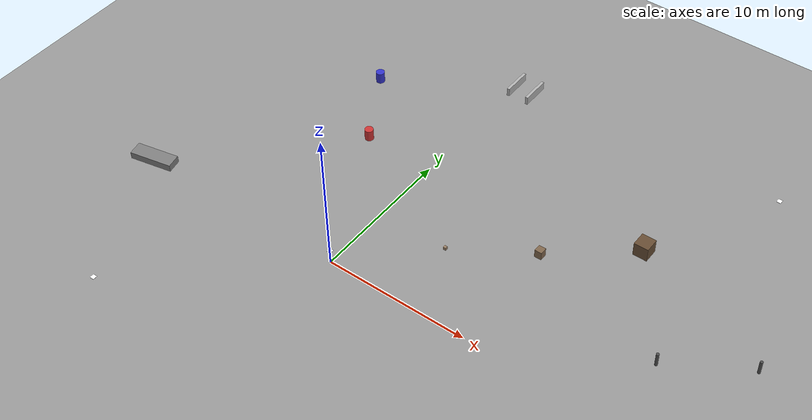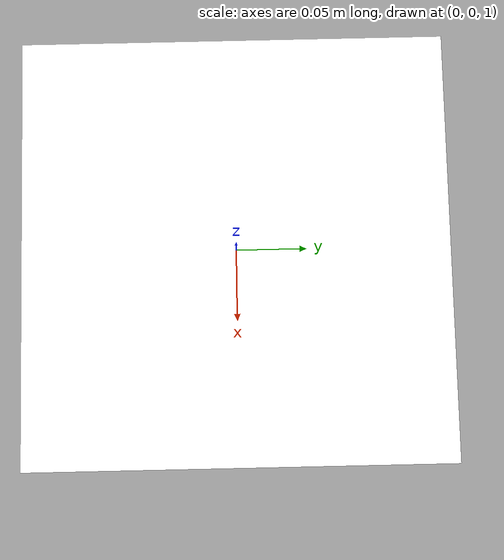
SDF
<?xml version="1.0" ?>
<sdf version="1.9">
  <world name="urc_obstacles">
    <!-- Include the default physics engine -->
    <include>
      <uri>model://ground_plane</uri>
    </include>

    <!-- Lighting for obstacle course -->
    <light name="sun" type="directional">
      <cast_shadows>true</cast_shadows>
      <pose>0 0 10 0 0 0</pose>
      <diffuse>0.8 0.8 0.8 1</diffuse>
      <specular>0.1 0.1 0.1 1</specular>
      <attenuation>
        <range>1000</range>
        <constant>0.9</constant>
        <linear>0.01</linear>
        <quadratic>0.001</quadratic>
      </attenuation>
      <direction>-0.5 0.1 -0.9</direction>
    </light>

    <!-- Flat terrain base -->
    <model name="flat_terrain">
      <static>true</static>
      <pose>0 0 0 0 0 0</pose>
      <link name="link">
        <collision name="collision">
          <geometry>
            <plane>
              <normal>0 0 1</normal>
              <size>100 100</size>
            </plane>
          </geometry>
        </collision>
        <visual name="visual">
          <geometry>
            <plane>
              <normal>0 0 1</normal>
              <size>100 100</size>
            </plane>
          </geometry>
          <material>
            <ambient>0.6 0.6 0.6 1</ambient>
            <diffuse>0.6 0.6 0.6 1</diffuse>
            <specular>0.1 0.1 0.1 1</specular>
          </material>
        </visual>
      </link>
    </model>

    <!-- Various sized rocks -->
    <model name="rock_small_1">
      <pose>5 5 0.1 0 0 0</pose>
      <static>true</static>
      <link name="link">
        <collision name="collision">
          <geometry>
            <box>
              <size>0.2 0.2 0.2</size>
            </box>
          </geometry>
        </collision>
        <visual name="visual">
          <geometry>
            <box>
              <size>0.2 0.2 0.2</size>
            </box>
          </geometry>
          <material>
            <ambient>0.6 0.5 0.4 1</ambient>
            <diffuse>0.6 0.5 0.4 1</diffuse>
          </material>
        </visual>
      </link>
    </model>

    <model name="rock_medium_1">
      <pose>10 8 0.3 0 0 0</pose>
      <static>true</static>
      <link name="link">
        <collision name="collision">
          <geometry>
            <box>
              <size>0.5 0.5 0.6</size>
            </box>
          </geometry>
        </collision>
        <visual name="visual">
          <geometry>
            <box>
              <size>0.5 0.5 0.6</size>
            </box>
          </geometry>
          <material>
            <ambient>0.5 0.4 0.3 1</ambient>
            <diffuse>0.5 0.4 0.3 1</diffuse>
          </material>
        </visual>
      </link>
    </model>

    <model name="rock_large_1">
      <pose>15 12 0.5 0 0 0</pose>
      <static>true</static>
      <link name="link">
        <collision name="collision">
          <geometry>
            <box>
              <size>1 1 1</size>
            </box>
          </geometry>
        </collision>
        <visual name="visual">
          <geometry>
            <box>
              <size>1 1 1</size>
            </box>
          </geometry>
          <material>
            <ambient>0.4 0.3 0.2 1</ambient>
            <diffuse>0.4 0.3 0.2 1</diffuse>
          </material>
        </visual>
      </link>
    </model>

    <!-- Barrels -->
    <model name="barrel_1">
      <pose>-5 10 0.4 0 0 0</pose>
      <static>true</static>
      <link name="link">
        <collision name="collision">
          <geometry>
            <cylinder>
              <radius>0.3</radius>
              <length>0.8</length>
            </cylinder>
          </geometry>
        </collision>
        <visual name="visual">
          <geometry>
            <cylinder>
              <radius>0.3</radius>
              <length>0.8</length>
            </cylinder>
          </geometry>
          <material>
            <ambient>0.8 0.2 0.2 1</ambient>
            <diffuse>0.8 0.2 0.2 1</diffuse>
          </material>
        </visual>
      </link>
    </model>

    <model name="barrel_2">
      <pose>-8 15 0.4 0 0 0</pose>
      <static>true</static>
      <link name="link">
        <collision name="collision">
          <geometry>
            <cylinder>
              <radius>0.3</radius>
              <length>0.8</length>
            </cylinder>
          </geometry>
        </collision>
        <visual name="visual">
          <geometry>
            <cylinder>
              <radius>0.3</radius>
              <length>0.8</length>
            </cylinder>
          </geometry>
          <material>
            <ambient>0.2 0.2 0.8 1</ambient>
            <diffuse>0.2 0.2 0.8 1</diffuse>
          </material>
        </visual>
      </link>
    </model>

    <!-- Posts -->
    <model name="post_1">
      <pose>20 5 0.5 0 0 0</pose>
      <static>true</static>
      <link name="link">
        <collision name="collision">
          <geometry>
            <cylinder>
              <radius>0.1</radius>
              <length>1</length>
            </cylinder>
          </geometry>
        </collision>
        <visual name="visual">
          <geometry>
            <cylinder>
              <radius>0.1</radius>
              <length>1</length>
            </cylinder>
          </geometry>
          <material>
            <ambient>0.3 0.3 0.3 1</ambient>
            <diffuse>0.3 0.3 0.3 1</diffuse>
          </material>
        </visual>
      </link>
    </model>

    <model name="post_2">
      <pose>25 8 0.5 0 0 0</pose>
      <static>true</static>
      <link name="link">
        <collision name="collision">
          <geometry>
            <cylinder>
              <radius>0.1</radius>
              <length>1</length>
            </cylinder>
          </geometry>
        </collision>
        <visual name="visual">
          <geometry>
            <cylinder>
              <radius>0.1</radius>
              <length>1</length>
            </cylinder>
          </geometry>
          <material>
            <ambient>0.3 0.3 0.3 1</ambient>
            <diffuse>0.3 0.3 0.3 1</diffuse>
          </material>
        </visual>
      </link>
    </model>

    <!-- Narrow passage obstacles -->
    <model name="passage_wall_1">
      <pose>0 20 0.3 0 0 0</pose>
      <static>true</static>
      <link name="link">
        <collision name="collision">
          <geometry>
            <box>
              <size>0.2 2 0.6</size>
            </box>
          </geometry>
        </collision>
        <visual name="visual">
          <geometry>
            <box>
              <size>0.2 2 0.6</size>
            </box>
          </geometry>
          <material>
            <ambient>0.7 0.7 0.7 1</ambient>
            <diffuse>0.7 0.7 0.7 1</diffuse>
          </material>
        </visual>
      </link>
    </model>

    <model name="passage_wall_2">
      <pose>1.5 20 0.3 0 0 0</pose>
      <static>true</static>
      <link name="link">
        <collision name="collision">
          <geometry>
            <box>
              <size>0.2 2 0.6</size>
            </box>
          </geometry>
        </collision>
        <visual name="visual">
          <geometry>
            <box>
              <size>0.2 2 0.6</size>
            </box>
          </geometry>
          <material>
            <ambient>0.7 0.7 0.7 1</ambient>
            <diffuse>0.7 0.7 0.7 1</diffuse>
          </material>
        </visual>
      </link>
    </model>

    <!-- Ramp -->
    <model name="ramp_1">
      <pose>-15 0 0.25 0 0 0.2</pose>
      <static>true</static>
      <link name="link">
        <collision name="collision">
          <geometry>
            <box>
              <size>3 1 0.5</size>
            </box>
          </geometry>
        </collision>
        <visual name="visual">
          <geometry>
            <box>
              <size>3 1 0.5</size>
            </box>
          </geometry>
          <material>
            <ambient>0.5 0.5 0.5 1</ambient>
            <diffuse>0.5 0.5 0.5 1</diffuse>
          </material>
        </visual>
      </link>
    </model>

    <!-- ArUco tag markers -->
    <model name="aruco_marker_1">
      <pose>0 0 1 0 0 0</pose>
      <static>true</static>
      <link name="link">
        <visual name="visual">
          <geometry>
            <box>
              <size>0.3 0.3 0.02</size>
            </box>
          </geometry>
          <material>
            <ambient>1 1 1 1</ambient>
            <diffuse>1 1 1 1</diffuse>
          </material>
        </visual>
      </link>
    </model>

    <model name="aruco_marker_2">
      <pose>20 20 1 0 0 0</pose>
      <static>true</static>
      <link name="link">
        <visual name="visual">
          <geometry>
            <box>
              <size>0.3 0.3 0.02</size>
            </box>
          </geometry>
          <material>
            <ambient>1 1 1 1</ambient>
            <diffuse>1 1 1 1</diffuse>
          </material>
        </visual>
      </link>
    </model>

    <model name="aruco_marker_3">
      <pose>-10 -10 1 0 0 0</pose>
      <static>true</static>
      <link name="link">
        <visual name="visual">
          <geometry>
            <box>
              <size>0.3 0.3 0.02</size>
            </box>
          </geometry>
          <material>
            <ambient>1 1 1 1</ambient>
            <diffuse>1 1 1 1</diffuse>
          </material>
        </visual>
      </link>
    </model>

    <!-- Physics settings -->
    <physics name="default_physics" default="0" type="ode">
      <gravity>0 0 -9.8066</gravity>
      <ode>
        <solver>
          <type>quick</type>
          <iters>150</iters>
          <precon_iters>0</precon_iters>
          <sor>1.400000</sor>
          <use_dynamic_moi_rescaling>0</use_dynamic_moi_rescaling>
        </solver>
        <constraints>
          <cfm>0.00001</cfm>
          <erp>0.2</erp>
          <contact_max_correcting_vel>2000.000000</contact_max_correcting_vel>
          <contact_surface_layer>0.01000</contact_surface_layer>
        </constraints>
      </ode>
      <max_step_size>0.004</max_step_size>
      <real_time_factor>1</real_time_factor>
      <real_time_update_rate>250</real_time_update_rate>
    </physics>

    <!-- GUI settings -->
    <gui fullscreen='0'>
      <camera name='user_camera'>
        <pose frame=''>10 10 5 0 0.275643 2.35619</pose>
        <view_controller>orbit</view_controller>
        <projection_type>perspective</projection_type>
      </camera>
    </gui>
  </world>
</sdf>
